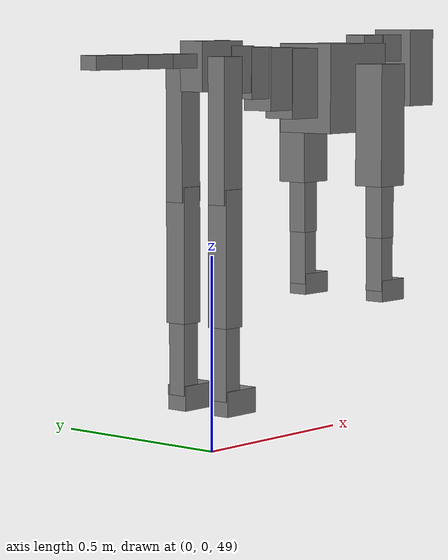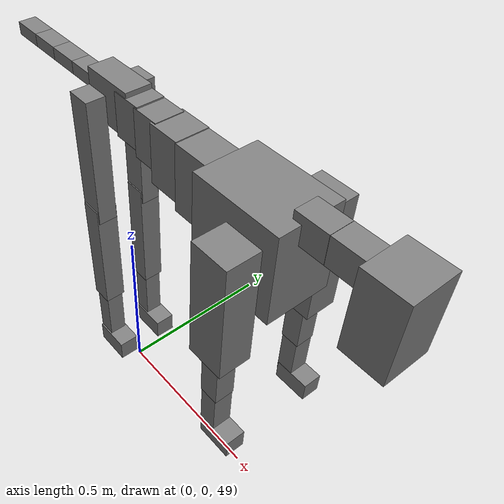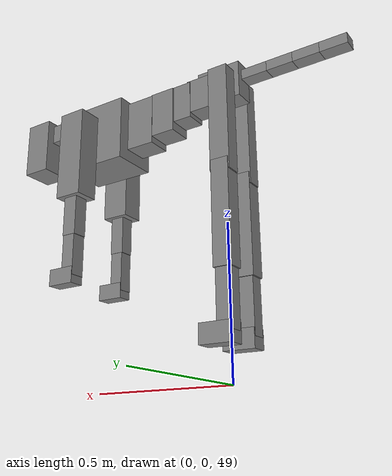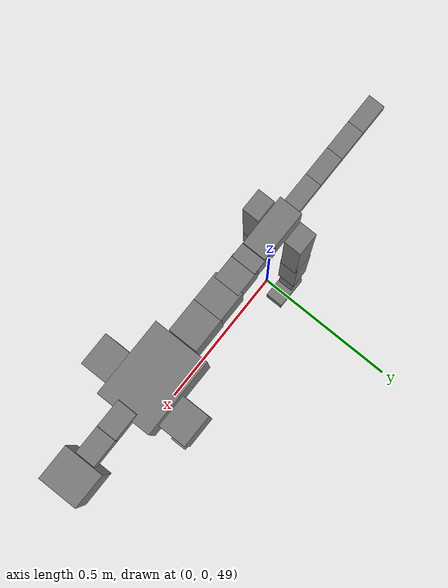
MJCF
<mujoco model="dog">

    <default>
        <joint armature="0.02" stiffness="1" damping="0.2" limited="true"/>
        <geom condim="3" friction="1 0.05 0.05" margin="0.01"/>
        <motor ctrllimited="true" ctrlrange="-1.0 1.0" forcelimited="true" gear="50"/>
    </default>

    <compiler inertiafromgeom="true" angle="radian"/>

    <option timestep="0.016" iterations="50" tolerance="1e-10" solver="Newton" jacobian="dense" cone="pyramidal"/>

    <size nconmax="20000" njmax="60000" nstack="5000000"/>
    <visual>
        <map force="0.1" zfar="30"/>
        <rgba haze="0.15 0.25 0.35 1"/>
        <quality shadowsize="2048"/>
        <global offwidth="800" offheight="800"/>
    </visual>

    <asset>
        <texture type="skybox" builtin="gradient" rgb1="0.3 0.5 0.7" rgb2="0 0 0" width="512" height="512"/>
        <texture name="texplane" type="2d" builtin="checker" rgb1=".2 .3 .4" rgb2=".1 0.15 0.2" width="512" height="512"
                 mark="cross" markrgb=".8 .8 .8"/>
        <texture name="texgeom" type="cube" builtin="flat" mark="cross" width="127" height="1278" rgb1="0.8 0.6 0.4"
                 rgb2="0.8 0.6 0.4" markrgb="1 1 1" random="0.01"/>

        <material name="matplane" reflectance="0.3" texture="texplane" texrepeat="1 1" texuniform="true"/>
        <material name="matgeom" texture="texgeom" texuniform="true" rgba="0.8 0.6 .4 1"/>
    </asset>

    <worldbody>
        <geom name="floor" pos="0 0 0" size="0 0 .25" type="plane" material="matplane" condim="3"/>

        <light directional="false" diffuse=".2 .2 .2" specular="0 0 0" pos="0 0 5" dir="0 0 -1" castshadow="false"/>
        <light mode="targetbodycom" target="torso" directional="false" diffuse=".8 .8 .8" specular="0.3 0.3 0.3"
               pos="0 0 4.0" dir="0 0 -1"/>

        <body name="root" pos="0 0 50">
            <freejoint name="root_1"/>
            <geom type="box" pos="0 0 -0.02" size="0.0774  0.0358  0.063" density="2030"/>

            <body name="spine1" pos="0.054 0 0">
                <joint name="spine1_y" axis="0 1 0" range="0 0.7" limited="true"/>
                <geom type="box" pos="0.02375 0 -0.03" size="0.04375  0.0375  0.05985" density="2030"/>

                <body name="spine2" pos="0.0612 0 0">
                    <joint name="spine2_y" axis="0 1 0" range="-0.15 0.15" limited="true"/>
                    <geom type="box" pos="0.03555  0  -0.04" size="0.04055  0.039  0.06615" density="2030"/>

                    <body name="spine3" pos="0.0730 0 0">
                        <joint name="spine3_y" axis="0 1 0" range="-0.15 0.15" limited="true"/>
                        <geom type="box" pos="0.03555  0  -0.057" size="0.04555  0.0445  0.081" density="2030"/>

                        <body name="spine4" pos="0.0780 0 0">
                            <joint name="spine4_y" axis="0 1 0" range="-0.15 0.15" limited="true"/>
                            <geom type="box" pos="0.05265  0  -0.07" size="0.05265  0.045  0.09135" density="2030"/>

                            <body name="torso" pos="0.1082 0 0">
                                <joint name="torso_y" axis="0 1 0" range="-0.15 0.15" limited="true"/>
                                <geom type="box" pos="0.11925  0  -0.085" size="0.11925  0.085  0.11745"
                                      density="2030"/>

                                <body name="neck1" pos="0.2160  0   0.0180">
                                    <joint name="neck1_y" axis="0 1 0" range="-1.2  -1" limited="true"/>
                                    <geom type="box" pos="0.0423  0  0" size="0.0423  0.03  0.036" density="2325"/>

                                    <body name="neck2" pos="0.0853  0  0">
                                        <joint name="neck2_y" axis="0 1 0" range="0.1  0" limited="true"/>
                                        <geom type="box" pos="0.0423  0  0" size="0.0423  0.03  0.036" density="2325"/>

                                        <body name="head" pos="0.0853  0  0">
                                            <joint name="head_y" axis="0 1 0" range="-0.3  -0.2" limited="true"/>
                                            <geom type="box" pos="0.0531  0  -0.055" size="0.0531  0.06  0.1044"
                                                  density="4030"/>

                                        </body>
                                    </body>
                                </body>

                                <body name="front_shoulder" pos="0.156  0   -0.0480">
                                    <joint name="front_shoulder_y" axis="0 1 0" range="-1 1.5" limited="true"/>
                                    <geom type="box" pos="0 0.13 -0.1346" size="0.0502  0.0429  0.1613" density="1158"/>
                                    <geom type="box" pos="0 -0.13 -0.1346" size="0.0502  0.0429  0.1613"
                                          density="1158"/>

                                    <body name="front_elbow" pos="0  0  -0.2692">
                                        <joint name="front_elbow_y" axis="0 1 0" range="-2 0" limited="true"/>
                                        <geom type="box" pos="0 0.13 -0.0823" size="0.0261  0.0266  0.0823"
                                              density="1081"/>
                                        <geom type="box" pos="0 -0.13 -0.0823" size="0.0261  0.0266  0.0823"
                                              density="1081"/>

                                        <body name="front_wrist" pos="0  0  -0.1645">
                                            <joint name="front_wrist_y" axis="0 1 0" range="-0.2 0" limited="true"/>
                                            <geom type="box" pos="0 0.13 -0.0645" size="0.0235  0.0261  0.0776"
                                                  density="1664"/>
                                            <geom type="box" pos="0 -0.13 -0.0645" size="0.0235  0.0261  0.0776"
                                                  density="1664"/>

                                            <body name="front_finger_end" pos="0  0  -0.1290">
                                                <joint name="front_finger_y" axis="0 1 0" range="-0.4 1"
                                                       limited="true"/>
                                                <geom type="box" pos="0.0266  0.13  -0.0133"
                                                      size="0.0488  0.0266  0.0283" density="1515"/>
                                                <geom type="box" pos="0.0266  -0.13  -0.0133"
                                                      size="0.0488  0.0266  0.0283" density="1515"/>

                                            </body>

                                        </body>
                                    </body>
                                </body>

                            </body>
                        </body>
                    </body>
                </body>
            </body>

            <body name="back_hip" pos="-0.03 0 -0.018">
                <joint name="back_hip_y" axis="0 1 0" range="-1.5 0.3" limited="true"/>
                <geom type="box" pos="0 0.07 -0.1610" size="0.0340  0.0267  0.1838" density="1154"/>
                <geom type="box" pos="0 -0.07 -0.1610" size="0.0340  0.0267  0.1838" density="1154"/>

                <body name="back_knee" pos="0  0  -0.3219">
                    <joint name="back_knee_y" axis="0 1 0" range="0 2.8" limited="true"/>
                    <geom type="box" pos="0 0.07 -0.1575" size="0.0303  0.0298  0.1731" density="1227"/>
                    <geom type="box" pos="0 -0.07 -0.1575" size="0.0303  0.0298  0.1731" density="1227"/>

                    <body name="back_ankle" pos="0  0  -0.3150">
                        <joint name="back_ankle_y" axis="0 1 0" range="-2.2 0" limited="true"/>
                        <geom type="box" pos="0 0.07 -0.0945" size="0.0253  0.0253  0.1058" density="1284"/>
                        <geom type="box" pos="0 -0.07 -0.0945" size="0.0253  0.0253  0.1058" density="1284"/>

                        <body name="back_toe_end" pos="0  0  -0.1891">
                            <joint name="back_toe_y" axis="0 1 0" range="-0.4 1" limited="true"/>
                            <geom type="box" pos="0.0297  0.07  -0.0170" size="0.0545  0.0297  0.0320" density="1515"/>
                            <geom type="box" pos="0.0297  -0.07  -0.0170" size="0.0545  0.0297  0.0320" density="1515"/>

                        </body>
                    </body>
                </body>
            </body>

            <body name="tail1" pos="-0.074 0 -0.006">
                <joint name="tail1_y" axis="0 1 0" range="-0.2 0.2" limited="true"/>
                <geom type="box" pos="-0.0536  0  0" size="0.045  0.025  0.0175" density="1587"/>

                <body name="tail2" pos="-0.09 0 0">
                    <joint name="tail2_y" axis="0 1 0" range="-0.2 0.2" limited="true"/>
                    <geom type="box" pos="-0.0536  0  0" size="0.045  0.025  0.0175" density="1587"/>

                    <body name="tail3" pos="-0.09 0 0">
                        <joint name="tail3_y" axis="0 1 0" range="-0.2 0.2" limited="true"/>
                        <geom type="box" pos="-0.0536  0  0" size="0.045  0.025  0.0175" density="1587"/>

                        <body name="tail4" pos="-0.09 0 0">
                            <joint name="tail4_y" axis="0 1 0" range="-0.2 0.2" limited="true"/>
                            <geom type="box" pos="-0.0536  0  0" size="0.045  0.025  0.0175" density="1587"/>

                        </body>
                    </body>
                </body>
            </body>
        </body>
    </worldbody>

    <actuator>
        <motor joint="spine1_y" forcerange="-150 150     "/>
        <motor joint="spine2_y" forcerange="-150 150     "/>
        <motor joint="spine3_y" forcerange="-150 150     "/>
        <motor joint="spine4_y" forcerange="-150 150     "/>
        <motor joint="torso_y" forcerange="-150 150     "/>
        <motor joint="neck1_y" forcerange="-100 100       "/>
        <motor joint="neck2_y" forcerange="-100 100       "/>
        <motor joint="head_y" forcerange="-150 150       "/>
        <motor joint="front_shoulder_y" forcerange="-190.54 195.72"/>
        <motor joint="front_elbow_y" forcerange="-137.35 156.46"/>
        <motor joint="front_wrist_y" forcerange="-110.51 98.10"/>
        <motor joint="front_finger_y" forcerange="-41.26 60.80"/>
        <motor joint="back_hip_y" forcerange="-253.25 302.46"/>
        <motor joint="back_knee_y" forcerange="-309.16 324.57"/>
        <motor joint="back_angle_y" forcerange="-216.75 87.66"/>
        <motor joint="back_toe_y" forcerange="-57.58 100.38"/>
        <motor joint="tail1_y" forcerange="-50 50     "/>
        <motor joint="tail2_y" forcerange="-50 50     "/>
        <motor joint="tail3_y" forcerange="-50 50     "/>
        <motor joint="tail4_y" forcerange="-50 50     "/>
    </actuator>
</mujoco>
